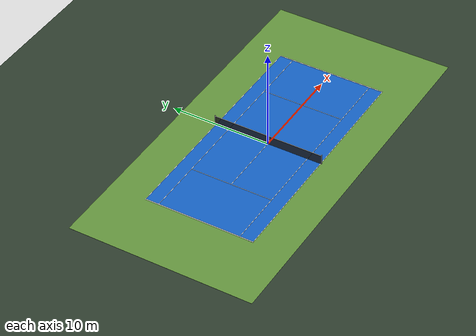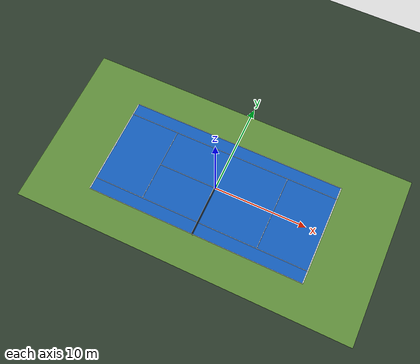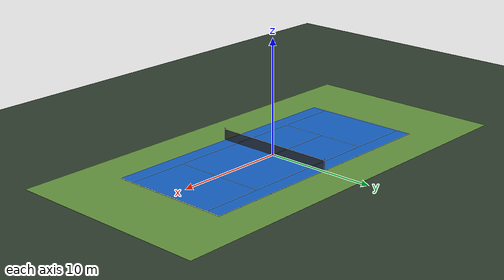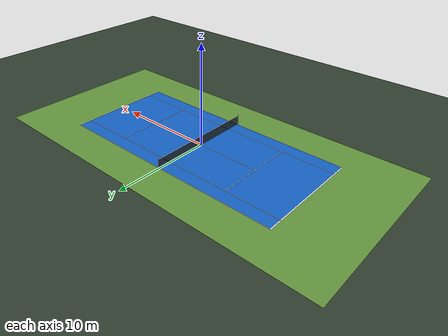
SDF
<?xml version="1.0" ?>
<sdf version='1.6'>
  <world name='tennis_world'>
    <include>
      <uri>model://sun</uri>
    </include>

    <model name='ground_plane'>
      <static>1</static>
      <link name='link'>
        <collision name='collision'>
          <geometry>
            <plane>
              <normal>0 0 1</normal>
              <size>100 100</size>
            </plane>
          </geometry>
          <surface>
            <friction>
              <ode>
                <mu>100</mu>
                <mu2>50</mu2>
              </ode>
            </friction>
          </surface>
        </collision>
        <visual name='visual'>
          <cast_shadows>0</cast_shadows>
          <geometry>
            <plane>
              <normal>0 0 1</normal>
              <size>100 100</size>
            </plane>
          </geometry>
          <material>
            <ambient>0.18 0.24 0.18 1</ambient>
            <diffuse>0.18 0.24 0.18 1</diffuse>
            <specular>0.02 0.02 0.02 1</specular>
          </material>
        </visual>
      </link>
    </model>

    <model name='tennis_court'>
      <static>1</static>
      <link name='court_link'>
        <visual name='outer_surface'>
          <pose>0 0 0.001 0 0 0</pose>
          <cast_shadows>0</cast_shadows>
          <geometry>
            <box>
              <size>36.57 18.29 0.002</size>
            </box>
          </geometry>
          <material>
            <ambient>0.31 0.47 0.19 1</ambient>
            <diffuse>0.39 0.58 0.24 1</diffuse>
            <specular>0.03 0.03 0.03 1</specular>
          </material>
        </visual>

        <visual name='inner_surface'>
          <pose>0 0 0.002 0 0 0</pose>
          <cast_shadows>0</cast_shadows>
          <geometry>
            <box>
              <size>23.77 10.97 0.002</size>
            </box>
          </geometry>
          <material>
            <ambient>0.05 0.29 0.63 1</ambient>
            <diffuse>0.08 0.38 0.76 1</diffuse>
            <specular>0.04 0.04 0.04 1</specular>
          </material>
        </visual>

        <visual name='baseline_positive_x'>
          <pose>11.835 0 0.003 0 0 0</pose>
          <cast_shadows>0</cast_shadows>
          <geometry>
            <box>
              <size>0.10 10.97 0.001</size>
            </box>
          </geometry>
          <material>
            <ambient>0.96 0.96 0.96 1</ambient>
            <diffuse>0.98 0.98 0.98 1</diffuse>
          </material>
        </visual>

        <visual name='baseline_negative_x'>
          <pose>-11.835 0 0.003 0 0 0</pose>
          <cast_shadows>0</cast_shadows>
          <geometry>
            <box>
              <size>0.10 10.97 0.001</size>
            </box>
          </geometry>
          <material>
            <ambient>0.96 0.96 0.96 1</ambient>
            <diffuse>0.98 0.98 0.98 1</diffuse>
          </material>
        </visual>

        <visual name='doubles_sideline_positive_y'>
          <pose>0 5.46 0.003 0 0 0</pose>
          <cast_shadows>0</cast_shadows>
          <geometry>
            <box>
              <size>23.77 0.05 0.001</size>
            </box>
          </geometry>
          <material>
            <ambient>0.96 0.96 0.96 1</ambient>
            <diffuse>0.98 0.98 0.98 1</diffuse>
          </material>
        </visual>

        <visual name='doubles_sideline_negative_y'>
          <pose>0 -5.46 0.003 0 0 0</pose>
          <cast_shadows>0</cast_shadows>
          <geometry>
            <box>
              <size>23.77 0.05 0.001</size>
            </box>
          </geometry>
          <material>
            <ambient>0.96 0.96 0.96 1</ambient>
            <diffuse>0.98 0.98 0.98 1</diffuse>
          </material>
        </visual>

        <visual name='singles_sideline_positive_y'>
          <pose>0 4.115 0.003 0 0 0</pose>
          <cast_shadows>0</cast_shadows>
          <geometry>
            <box>
              <size>23.77 0.05 0.001</size>
            </box>
          </geometry>
          <material>
            <ambient>0.96 0.96 0.96 1</ambient>
            <diffuse>0.98 0.98 0.98 1</diffuse>
          </material>
        </visual>

        <visual name='singles_sideline_negative_y'>
          <pose>0 -4.115 0.003 0 0 0</pose>
          <cast_shadows>0</cast_shadows>
          <geometry>
            <box>
              <size>23.77 0.05 0.001</size>
            </box>
          </geometry>
          <material>
            <ambient>0.96 0.96 0.96 1</ambient>
            <diffuse>0.98 0.98 0.98 1</diffuse>
          </material>
        </visual>

        <visual name='service_line_positive_x'>
          <pose>6.40 0 0.003 0 0 0</pose>
          <cast_shadows>0</cast_shadows>
          <geometry>
            <box>
              <size>0.05 8.23 0.001</size>
            </box>
          </geometry>
          <material>
            <ambient>0.96 0.96 0.96 1</ambient>
            <diffuse>0.98 0.98 0.98 1</diffuse>
          </material>
        </visual>

        <visual name='service_line_negative_x'>
          <pose>-6.40 0 0.003 0 0 0</pose>
          <cast_shadows>0</cast_shadows>
          <geometry>
            <box>
              <size>0.05 8.23 0.001</size>
            </box>
          </geometry>
          <material>
            <ambient>0.96 0.96 0.96 1</ambient>
            <diffuse>0.98 0.98 0.98 1</diffuse>
          </material>
        </visual>

        <visual name='center_service_line'>
          <pose>0 0 0.003 0 0 0</pose>
          <cast_shadows>0</cast_shadows>
          <geometry>
            <box>
              <size>12.80 0.05 0.001</size>
            </box>
          </geometry>
          <material>
            <ambient>0.96 0.96 0.96 1</ambient>
            <diffuse>0.98 0.98 0.98 1</diffuse>
          </material>
        </visual>

        <visual name='center_mark_positive_x'>
          <pose>11.735 0 0.003 0 0 0</pose>
          <cast_shadows>0</cast_shadows>
          <geometry>
            <box>
              <size>0.10 0.05 0.001</size>
            </box>
          </geometry>
          <material>
            <ambient>0.96 0.96 0.96 1</ambient>
            <diffuse>0.98 0.98 0.98 1</diffuse>
          </material>
        </visual>

        <visual name='center_mark_negative_x'>
          <pose>-11.735 0 0.003 0 0 0</pose>
          <cast_shadows>0</cast_shadows>
          <geometry>
            <box>
              <size>0.10 0.05 0.001</size>
            </box>
          </geometry>
          <material>
            <ambient>0.96 0.96 0.96 1</ambient>
            <diffuse>0.98 0.98 0.98 1</diffuse>
          </material>
        </visual>
      </link>
    </model>

    <model name='tennis_net'>
      <static>1</static>
      <link name='net_link'>
        <collision name='net_collision'>
          <pose>0 0 0.457 0 0 0</pose>
          <geometry>
            <box>
              <size>0.04 10.97 0.914</size>
            </box>
          </geometry>
        </collision>
        <visual name='net_visual'>
          <pose>0 0 0.457 0 0 0</pose>
          <geometry>
            <box>
              <size>0.02 10.97 0.914</size>
            </box>
          </geometry>
          <material>
            <ambient>0.15 0.15 0.15 0.85</ambient>
            <diffuse>0.20 0.20 0.20 0.85</diffuse>
            <specular>0.02 0.02 0.02 1</specular>
          </material>
        </visual>

        <collision name='top_band_collision'>
          <pose>0 0 0.927 0 0 0</pose>
          <geometry>
            <box>
              <size>0.05 11.10 0.03</size>
            </box>
          </geometry>
        </collision>
        <visual name='top_band_visual'>
          <pose>0 0 0.927 0 0 0</pose>
          <geometry>
            <box>
              <size>0.05 11.10 0.03</size>
            </box>
          </geometry>
          <material>
            <ambient>0.96 0.96 0.96 1</ambient>
            <diffuse>0.98 0.98 0.98 1</diffuse>
          </material>
        </visual>

        <collision name='left_post_collision'>
          <pose>0 5.55 0.535 0 0 0</pose>
          <geometry>
            <cylinder>
              <radius>0.035</radius>
              <length>1.07</length>
            </cylinder>
          </geometry>
        </collision>
        <visual name='left_post_visual'>
          <pose>0 5.55 0.535 0 0 0</pose>
          <geometry>
            <cylinder>
              <radius>0.035</radius>
              <length>1.07</length>
            </cylinder>
          </geometry>
          <material>
            <ambient>0.75 0.75 0.75 1</ambient>
            <diffuse>0.82 0.82 0.82 1</diffuse>
          </material>
        </visual>

        <collision name='right_post_collision'>
          <pose>0 -5.55 0.535 0 0 0</pose>
          <geometry>
            <cylinder>
              <radius>0.035</radius>
              <length>1.07</length>
            </cylinder>
          </geometry>
        </collision>
        <visual name='right_post_visual'>
          <pose>0 -5.55 0.535 0 0 0</pose>
          <geometry>
            <cylinder>
              <radius>0.035</radius>
              <length>1.07</length>
            </cylinder>
          </geometry>
          <material>
            <ambient>0.75 0.75 0.75 1</ambient>
            <diffuse>0.82 0.82 0.82 1</diffuse>
          </material>
        </visual>
      </link>
    </model>

    <gui fullscreen='0'>
      <camera name='user_camera'>
        <pose>2.741982 -6.633960 8.130347 -0.000001 0.800000 1.569999</pose>
        <view_controller>orbit</view_controller>
        <projection_type>perspective</projection_type>
      </camera>
    </gui>

  </world>
</sdf>
